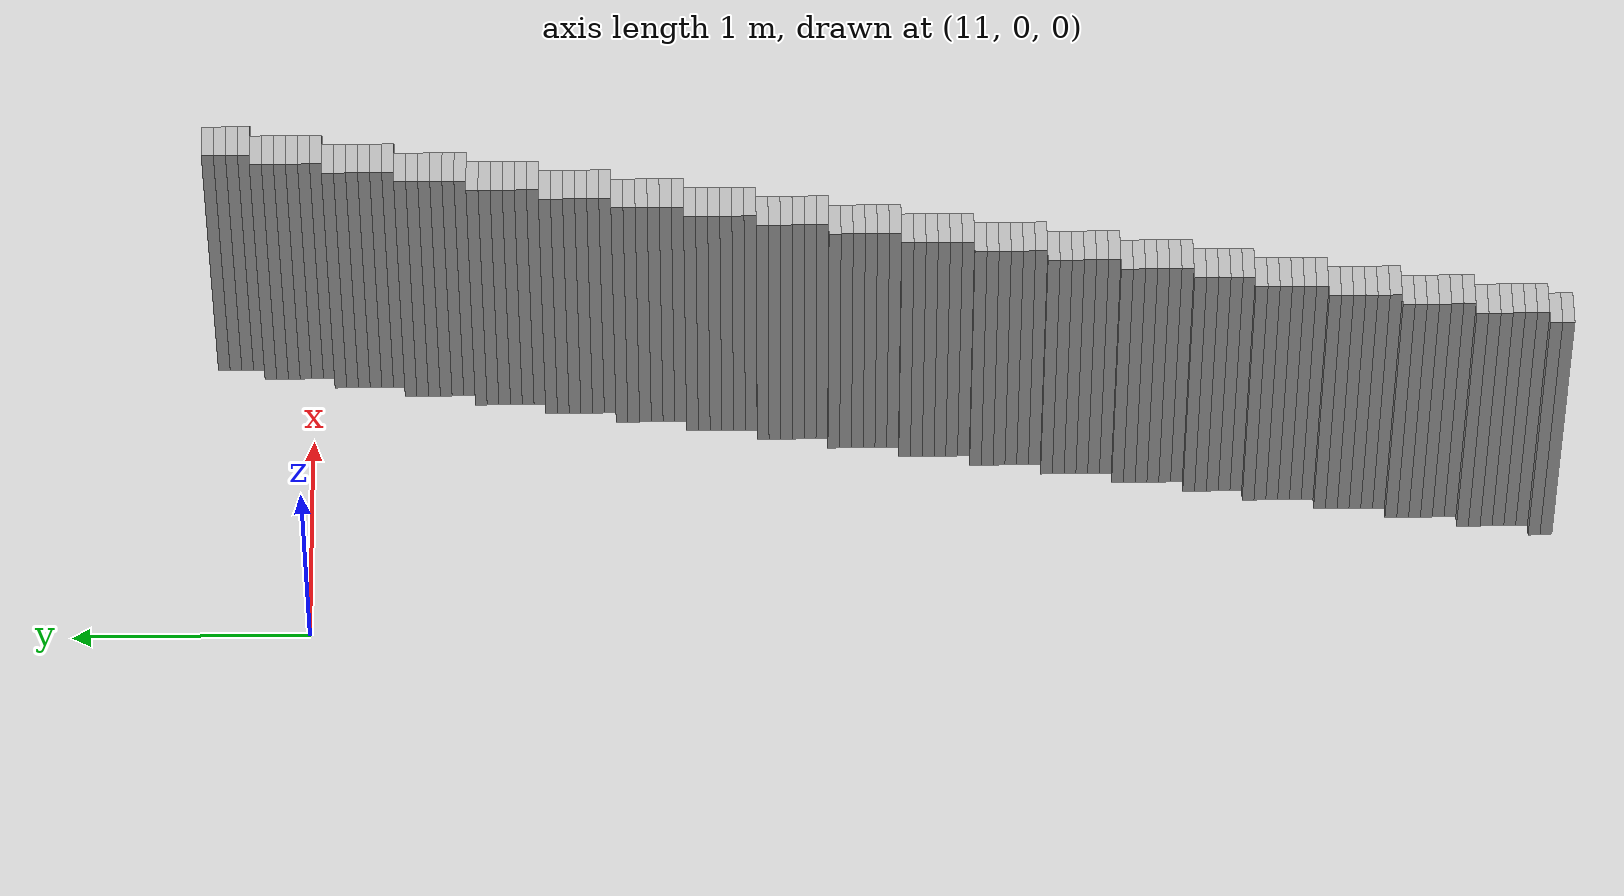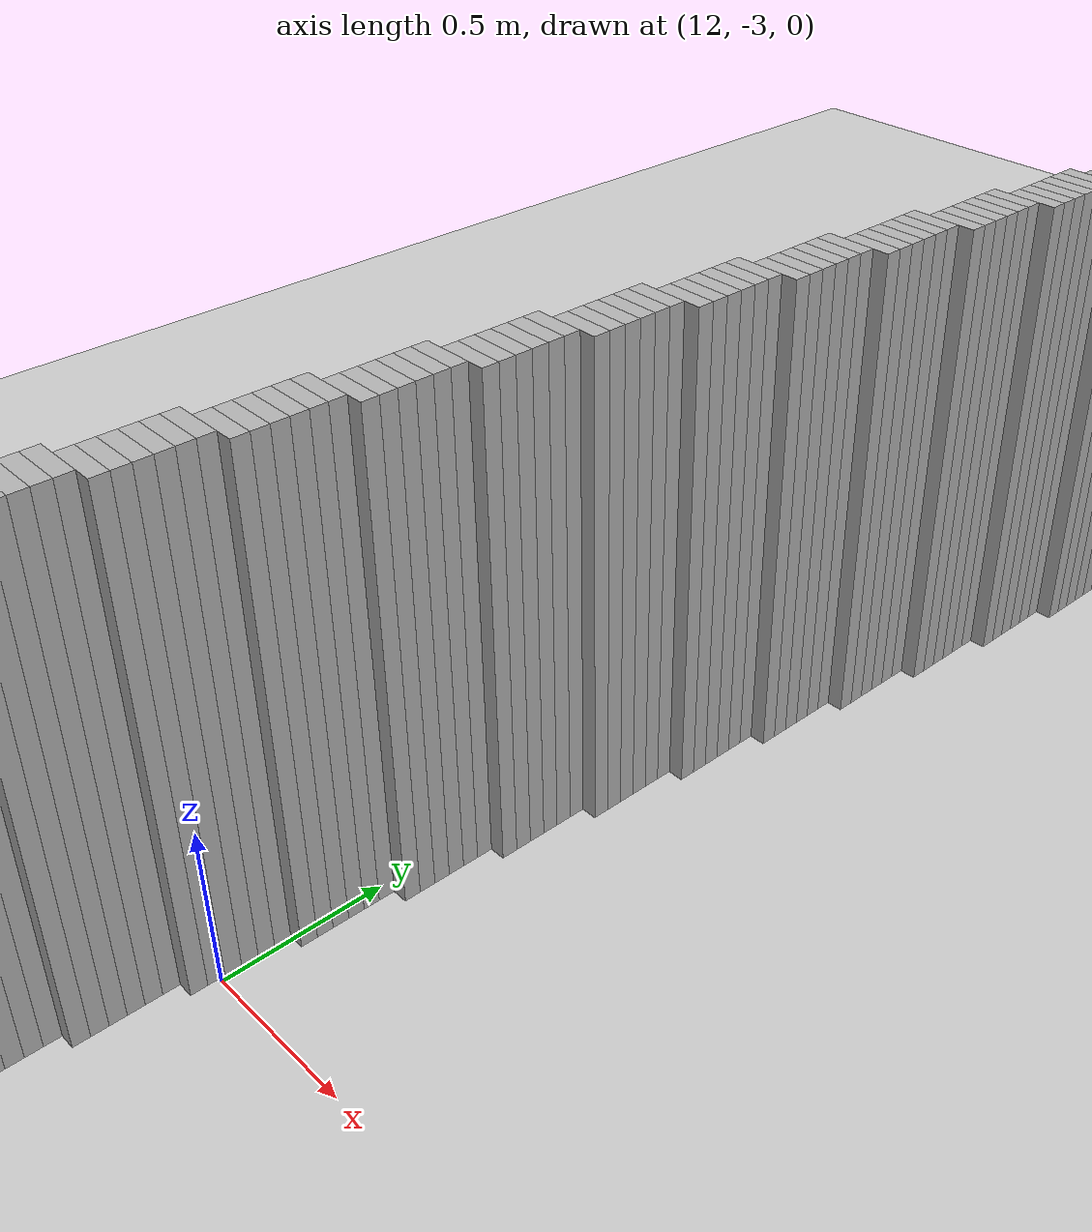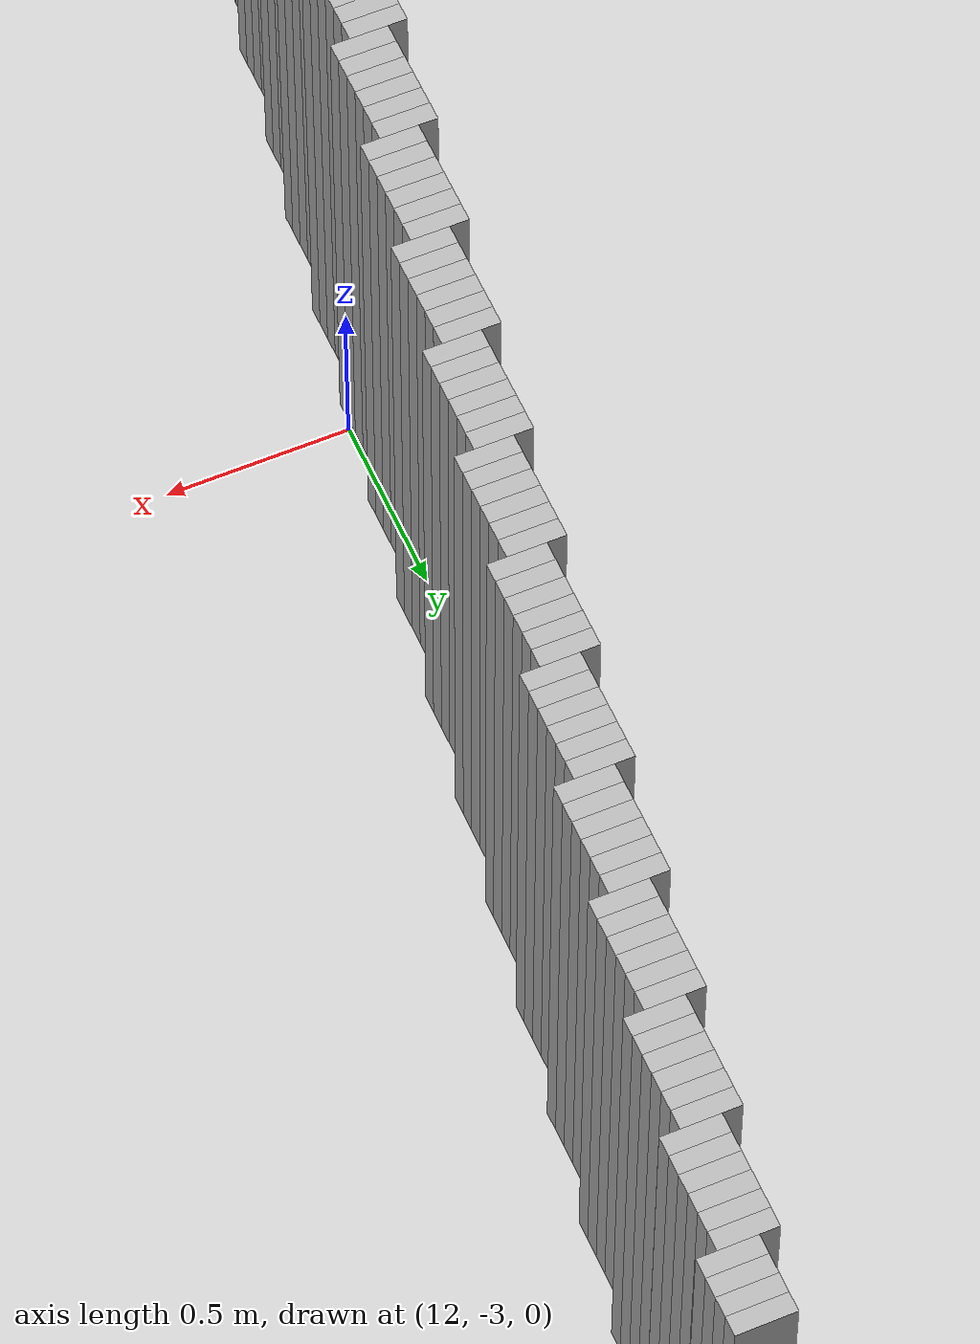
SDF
<sdf version="1.6">
 <world name="df_walled">
  <include><uri>model://sun</uri></include>
  <include><uri>model://ground_plane</uri></include>
  <model name="df_walls">
   <static>true</static>
   <link name="wall_00328">
    <pose>12.4640 0.3910 0.7500 0 0 0</pose>
    <collision name="col"><geometry><box><size>0.1500 0.0500 1.5000</size></box></geometry></collision>
    <visual name="vis">
     <geometry><box><size>0.1500 0.0500 1.5000</size></box></geometry>
     <material><ambient>0.5 0.5 0.5 1</ambient><diffuse>0.7 0.7 0.7 1</diffuse></material>
    </visual>
   </link>
   <link name="wall_00330">
    <pose>12.4640 0.3410 0.7500 0 0 0</pose>
    <collision name="col"><geometry><box><size>0.1500 0.0500 1.5000</size></box></geometry></collision>
    <visual name="vis">
     <geometry><box><size>0.1500 0.0500 1.5000</size></box></geometry>
     <material><ambient>0.5 0.5 0.5 1</ambient><diffuse>0.7 0.7 0.7 1</diffuse></material>
    </visual>
   </link>
   <link name="wall_00332">
    <pose>12.4640 0.2910 0.7500 0 0 0</pose>
    <collision name="col"><geometry><box><size>0.1500 0.0500 1.5000</size></box></geometry></collision>
    <visual name="vis">
     <geometry><box><size>0.1500 0.0500 1.5000</size></box></geometry>
     <material><ambient>0.5 0.5 0.5 1</ambient><diffuse>0.7 0.7 0.7 1</diffuse></material>
    </visual>
   </link>
   <link name="wall_00334">
    <pose>12.4640 0.2410 0.7500 0 0 0</pose>
    <collision name="col"><geometry><box><size>0.1500 0.0500 1.5000</size></box></geometry></collision>
    <visual name="vis">
     <geometry><box><size>0.1500 0.0500 1.5000</size></box></geometry>
     <material><ambient>0.5 0.5 0.5 1</ambient><diffuse>0.7 0.7 0.7 1</diffuse></material>
    </visual>
   </link>
   <link name="wall_00336">
    <pose>12.4140 0.1910 0.7500 0 0 0</pose>
    <collision name="col"><geometry><box><size>0.1500 0.0500 1.5000</size></box></geometry></collision>
    <visual name="vis">
     <geometry><box><size>0.1500 0.0500 1.5000</size></box></geometry>
     <material><ambient>0.5 0.5 0.5 1</ambient><diffuse>0.7 0.7 0.7 1</diffuse></material>
    </visual>
   </link>
   <link name="wall_00338">
    <pose>12.4140 0.1410 0.7500 0 0 0</pose>
    <collision name="col"><geometry><box><size>0.1500 0.0500 1.5000</size></box></geometry></collision>
    <visual name="vis">
     <geometry><box><size>0.1500 0.0500 1.5000</size></box></geometry>
     <material><ambient>0.5 0.5 0.5 1</ambient><diffuse>0.7 0.7 0.7 1</diffuse></material>
    </visual>
   </link>
   <link name="wall_00340">
    <pose>12.4140 0.0910 0.7500 0 0 0</pose>
    <collision name="col"><geometry><box><size>0.1500 0.0500 1.5000</size></box></geometry></collision>
    <visual name="vis">
     <geometry><box><size>0.1500 0.0500 1.5000</size></box></geometry>
     <material><ambient>0.5 0.5 0.5 1</ambient><diffuse>0.7 0.7 0.7 1</diffuse></material>
    </visual>
   </link>
   <link name="wall_00342">
    <pose>12.4140 0.0410 0.7500 0 0 0</pose>
    <collision name="col"><geometry><box><size>0.1500 0.0500 1.5000</size></box></geometry></collision>
    <visual name="vis">
     <geometry><box><size>0.1500 0.0500 1.5000</size></box></geometry>
     <material><ambient>0.5 0.5 0.5 1</ambient><diffuse>0.7 0.7 0.7 1</diffuse></material>
    </visual>
   </link>
   <link name="wall_00344">
    <pose>12.4140 -0.0090 0.7500 0 0 0</pose>
    <collision name="col"><geometry><box><size>0.1500 0.0500 1.5000</size></box></geometry></collision>
    <visual name="vis">
     <geometry><box><size>0.1500 0.0500 1.5000</size></box></geometry>
     <material><ambient>0.5 0.5 0.5 1</ambient><diffuse>0.7 0.7 0.7 1</diffuse></material>
    </visual>
   </link>
   <link name="wall_00346">
    <pose>12.4140 -0.0590 0.7500 0 0 0</pose>
    <collision name="col"><geometry><box><size>0.1500 0.0500 1.5000</size></box></geometry></collision>
    <visual name="vis">
     <geometry><box><size>0.1500 0.0500 1.5000</size></box></geometry>
     <material><ambient>0.5 0.5 0.5 1</ambient><diffuse>0.7 0.7 0.7 1</diffuse></material>
    </visual>
   </link>
   <link name="wall_00348">
    <pose>12.3640 -0.1090 0.7500 0 0 0</pose>
    <collision name="col"><geometry><box><size>0.1500 0.0500 1.5000</size></box></geometry></collision>
    <visual name="vis">
     <geometry><box><size>0.1500 0.0500 1.5000</size></box></geometry>
     <material><ambient>0.5 0.5 0.5 1</ambient><diffuse>0.7 0.7 0.7 1</diffuse></material>
    </visual>
   </link>
   <link name="wall_00350">
    <pose>12.3640 -0.1590 0.7500 0 0 0</pose>
    <collision name="col"><geometry><box><size>0.1500 0.0500 1.5000</size></box></geometry></collision>
    <visual name="vis">
     <geometry><box><size>0.1500 0.0500 1.5000</size></box></geometry>
     <material><ambient>0.5 0.5 0.5 1</ambient><diffuse>0.7 0.7 0.7 1</diffuse></material>
    </visual>
   </link>
   <link name="wall_00352">
    <pose>12.3640 -0.2090 0.7500 0 0 0</pose>
    <collision name="col"><geometry><box><size>0.1500 0.0500 1.5000</size></box></geometry></collision>
    <visual name="vis">
     <geometry><box><size>0.1500 0.0500 1.5000</size></box></geometry>
     <material><ambient>0.5 0.5 0.5 1</ambient><diffuse>0.7 0.7 0.7 1</diffuse></material>
    </visual>
   </link>
   <link name="wall_00354">
    <pose>12.3640 -0.2590 0.7500 0 0 0</pose>
    <collision name="col"><geometry><box><size>0.1500 0.0500 1.5000</size></box></geometry></collision>
    <visual name="vis">
     <geometry><box><size>0.1500 0.0500 1.5000</size></box></geometry>
     <material><ambient>0.5 0.5 0.5 1</ambient><diffuse>0.7 0.7 0.7 1</diffuse></material>
    </visual>
   </link>
   <link name="wall_00356">
    <pose>12.3640 -0.3090 0.7500 0 0 0</pose>
    <collision name="col"><geometry><box><size>0.1500 0.0500 1.5000</size></box></geometry></collision>
    <visual name="vis">
     <geometry><box><size>0.1500 0.0500 1.5000</size></box></geometry>
     <material><ambient>0.5 0.5 0.5 1</ambient><diffuse>0.7 0.7 0.7 1</diffuse></material>
    </visual>
   </link>
   <link name="wall_00358">
    <pose>12.3640 -0.3590 0.7500 0 0 0</pose>
    <collision name="col"><geometry><box><size>0.1500 0.0500 1.5000</size></box></geometry></collision>
    <visual name="vis">
     <geometry><box><size>0.1500 0.0500 1.5000</size></box></geometry>
     <material><ambient>0.5 0.5 0.5 1</ambient><diffuse>0.7 0.7 0.7 1</diffuse></material>
    </visual>
   </link>
   <link name="wall_00360">
    <pose>12.3140 -0.4090 0.7500 0 0 0</pose>
    <collision name="col"><geometry><box><size>0.1500 0.0500 1.5000</size></box></geometry></collision>
    <visual name="vis">
     <geometry><box><size>0.1500 0.0500 1.5000</size></box></geometry>
     <material><ambient>0.5 0.5 0.5 1</ambient><diffuse>0.7 0.7 0.7 1</diffuse></material>
    </visual>
   </link>
   <link name="wall_00362">
    <pose>12.3140 -0.4590 0.7500 0 0 0</pose>
    <collision name="col"><geometry><box><size>0.1500 0.0500 1.5000</size></box></geometry></collision>
    <visual name="vis">
     <geometry><box><size>0.1500 0.0500 1.5000</size></box></geometry>
     <material><ambient>0.5 0.5 0.5 1</ambient><diffuse>0.7 0.7 0.7 1</diffuse></material>
    </visual>
   </link>
   <link name="wall_00364">
    <pose>12.3140 -0.5090 0.7500 0 0 0</pose>
    <collision name="col"><geometry><box><size>0.1500 0.0500 1.5000</size></box></geometry></collision>
    <visual name="vis">
     <geometry><box><size>0.1500 0.0500 1.5000</size></box></geometry>
     <material><ambient>0.5 0.5 0.5 1</ambient><diffuse>0.7 0.7 0.7 1</diffuse></material>
    </visual>
   </link>
   <link name="wall_00366">
    <pose>12.3140 -0.5590 0.7500 0 0 0</pose>
    <collision name="col"><geometry><box><size>0.1500 0.0500 1.5000</size></box></geometry></collision>
    <visual name="vis">
     <geometry><box><size>0.1500 0.0500 1.5000</size></box></geometry>
     <material><ambient>0.5 0.5 0.5 1</ambient><diffuse>0.7 0.7 0.7 1</diffuse></material>
    </visual>
   </link>
   <link name="wall_00368">
    <pose>12.3140 -0.6090 0.7500 0 0 0</pose>
    <collision name="col"><geometry><box><size>0.1500 0.0500 1.5000</size></box></geometry></collision>
    <visual name="vis">
     <geometry><box><size>0.1500 0.0500 1.5000</size></box></geometry>
     <material><ambient>0.5 0.5 0.5 1</ambient><diffuse>0.7 0.7 0.7 1</diffuse></material>
    </visual>
   </link>
   <link name="wall_00370">
    <pose>12.3140 -0.6590 0.7500 0 0 0</pose>
    <collision name="col"><geometry><box><size>0.1500 0.0500 1.5000</size></box></geometry></collision>
    <visual name="vis">
     <geometry><box><size>0.1500 0.0500 1.5000</size></box></geometry>
     <material><ambient>0.5 0.5 0.5 1</ambient><diffuse>0.7 0.7 0.7 1</diffuse></material>
    </visual>
   </link>
   <link name="wall_00372">
    <pose>12.2640 -0.7090 0.7500 0 0 0</pose>
    <collision name="col"><geometry><box><size>0.1500 0.0500 1.5000</size></box></geometry></collision>
    <visual name="vis">
     <geometry><box><size>0.1500 0.0500 1.5000</size></box></geometry>
     <material><ambient>0.5 0.5 0.5 1</ambient><diffuse>0.7 0.7 0.7 1</diffuse></material>
    </visual>
   </link>
   <link name="wall_00374">
    <pose>12.2640 -0.7590 0.7500 0 0 0</pose>
    <collision name="col"><geometry><box><size>0.1500 0.0500 1.5000</size></box></geometry></collision>
    <visual name="vis">
     <geometry><box><size>0.1500 0.0500 1.5000</size></box></geometry>
     <material><ambient>0.5 0.5 0.5 1</ambient><diffuse>0.7 0.7 0.7 1</diffuse></material>
    </visual>
   </link>
   <link name="wall_00376">
    <pose>12.2640 -0.8090 0.7500 0 0 0</pose>
    <collision name="col"><geometry><box><size>0.1500 0.0500 1.5000</size></box></geometry></collision>
    <visual name="vis">
     <geometry><box><size>0.1500 0.0500 1.5000</size></box></geometry>
     <material><ambient>0.5 0.5 0.5 1</ambient><diffuse>0.7 0.7 0.7 1</diffuse></material>
    </visual>
   </link>
   <link name="wall_00378">
    <pose>12.2640 -0.8590 0.7500 0 0 0</pose>
    <collision name="col"><geometry><box><size>0.1500 0.0500 1.5000</size></box></geometry></collision>
    <visual name="vis">
     <geometry><box><size>0.1500 0.0500 1.5000</size></box></geometry>
     <material><ambient>0.5 0.5 0.5 1</ambient><diffuse>0.7 0.7 0.7 1</diffuse></material>
    </visual>
   </link>
   <link name="wall_00380">
    <pose>12.2640 -0.9090 0.7500 0 0 0</pose>
    <collision name="col"><geometry><box><size>0.1500 0.0500 1.5000</size></box></geometry></collision>
    <visual name="vis">
     <geometry><box><size>0.1500 0.0500 1.5000</size></box></geometry>
     <material><ambient>0.5 0.5 0.5 1</ambient><diffuse>0.7 0.7 0.7 1</diffuse></material>
    </visual>
   </link>
   <link name="wall_00382">
    <pose>12.2640 -0.9590 0.7500 0 0 0</pose>
    <collision name="col"><geometry><box><size>0.1500 0.0500 1.5000</size></box></geometry></collision>
    <visual name="vis">
     <geometry><box><size>0.1500 0.0500 1.5000</size></box></geometry>
     <material><ambient>0.5 0.5 0.5 1</ambient><diffuse>0.7 0.7 0.7 1</diffuse></material>
    </visual>
   </link>
   <link name="wall_00384">
    <pose>12.2140 -1.0090 0.7500 0 0 0</pose>
    <collision name="col"><geometry><box><size>0.1500 0.0500 1.5000</size></box></geometry></collision>
    <visual name="vis">
     <geometry><box><size>0.1500 0.0500 1.5000</size></box></geometry>
     <material><ambient>0.5 0.5 0.5 1</ambient><diffuse>0.7 0.7 0.7 1</diffuse></material>
    </visual>
   </link>
   <link name="wall_00386">
    <pose>12.2140 -1.0590 0.7500 0 0 0</pose>
    <collision name="col"><geometry><box><size>0.1500 0.0500 1.5000</size></box></geometry></collision>
    <visual name="vis">
     <geometry><box><size>0.1500 0.0500 1.5000</size></box></geometry>
     <material><ambient>0.5 0.5 0.5 1</ambient><diffuse>0.7 0.7 0.7 1</diffuse></material>
    </visual>
   </link>
   <link name="wall_00388">
    <pose>12.2140 -1.1090 0.7500 0 0 0</pose>
    <collision name="col"><geometry><box><size>0.1500 0.0500 1.5000</size></box></geometry></collision>
    <visual name="vis">
     <geometry><box><size>0.1500 0.0500 1.5000</size></box></geometry>
     <material><ambient>0.5 0.5 0.5 1</ambient><diffuse>0.7 0.7 0.7 1</diffuse></material>
    </visual>
   </link>
   <link name="wall_00390">
    <pose>12.2140 -1.1590 0.7500 0 0 0</pose>
    <collision name="col"><geometry><box><size>0.1500 0.0500 1.5000</size></box></geometry></collision>
    <visual name="vis">
     <geometry><box><size>0.1500 0.0500 1.5000</size></box></geometry>
     <material><ambient>0.5 0.5 0.5 1</ambient><diffuse>0.7 0.7 0.7 1</diffuse></material>
    </visual>
   </link>
   <link name="wall_00392">
    <pose>12.2140 -1.2090 0.7500 0 0 0</pose>
    <collision name="col"><geometry><box><size>0.1500 0.0500 1.5000</size></box></geometry></collision>
    <visual name="vis">
     <geometry><box><size>0.1500 0.0500 1.5000</size></box></geometry>
     <material><ambient>0.5 0.5 0.5 1</ambient><diffuse>0.7 0.7 0.7 1</diffuse></material>
    </visual>
   </link>
   <link name="wall_00394">
    <pose>12.2140 -1.2590 0.7500 0 0 0</pose>
    <collision name="col"><geometry><box><size>0.1500 0.0500 1.5000</size></box></geometry></collision>
    <visual name="vis">
     <geometry><box><size>0.1500 0.0500 1.5000</size></box></geometry>
     <material><ambient>0.5 0.5 0.5 1</ambient><diffuse>0.7 0.7 0.7 1</diffuse></material>
    </visual>
   </link>
   <link name="wall_00396">
    <pose>12.1640 -1.3090 0.7500 0 0 0</pose>
    <collision name="col"><geometry><box><size>0.1500 0.0500 1.5000</size></box></geometry></collision>
    <visual name="vis">
     <geometry><box><size>0.1500 0.0500 1.5000</size></box></geometry>
     <material><ambient>0.5 0.5 0.5 1</ambient><diffuse>0.7 0.7 0.7 1</diffuse></material>
    </visual>
   </link>
   <link name="wall_00398">
    <pose>12.1640 -1.3590 0.7500 0 0 0</pose>
    <collision name="col"><geometry><box><size>0.1500 0.0500 1.5000</size></box></geometry></collision>
    <visual name="vis">
     <geometry><box><size>0.1500 0.0500 1.5000</size></box></geometry>
     <material><ambient>0.5 0.5 0.5 1</ambient><diffuse>0.7 0.7 0.7 1</diffuse></material>
    </visual>
   </link>
   <link name="wall_00400">
    <pose>12.1640 -1.4090 0.7500 0 0 0</pose>
    <collision name="col"><geometry><box><size>0.1500 0.0500 1.5000</size></box></geometry></collision>
    <visual name="vis">
     <geometry><box><size>0.1500 0.0500 1.5000</size></box></geometry>
     <material><ambient>0.5 0.5 0.5 1</ambient><diffuse>0.7 0.7 0.7 1</diffuse></material>
    </visual>
   </link>
   <link name="wall_00402">
    <pose>12.1640 -1.4590 0.7500 0 0 0</pose>
    <collision name="col"><geometry><box><size>0.1500 0.0500 1.5000</size></box></geometry></collision>
    <visual name="vis">
     <geometry><box><size>0.1500 0.0500 1.5000</size></box></geometry>
     <material><ambient>0.5 0.5 0.5 1</ambient><diffuse>0.7 0.7 0.7 1</diffuse></material>
    </visual>
   </link>
   <link name="wall_00404">
    <pose>12.1640 -1.5090 0.7500 0 0 0</pose>
    <collision name="col"><geometry><box><size>0.1500 0.0500 1.5000</size></box></geometry></collision>
    <visual name="vis">
     <geometry><box><size>0.1500 0.0500 1.5000</size></box></geometry>
     <material><ambient>0.5 0.5 0.5 1</ambient><diffuse>0.7 0.7 0.7 1</diffuse></material>
    </visual>
   </link>
   <link name="wall_00406">
    <pose>12.1640 -1.5590 0.7500 0 0 0</pose>
    <collision name="col"><geometry><box><size>0.1500 0.0500 1.5000</size></box></geometry></collision>
    <visual name="vis">
     <geometry><box><size>0.1500 0.0500 1.5000</size></box></geometry>
     <material><ambient>0.5 0.5 0.5 1</ambient><diffuse>0.7 0.7 0.7 1</diffuse></material>
    </visual>
   </link>
   <link name="wall_00408">
    <pose>12.1140 -1.6090 0.7500 0 0 0</pose>
    <collision name="col"><geometry><box><size>0.1500 0.0500 1.5000</size></box></geometry></collision>
    <visual name="vis">
     <geometry><box><size>0.1500 0.0500 1.5000</size></box></geometry>
     <material><ambient>0.5 0.5 0.5 1</ambient><diffuse>0.7 0.7 0.7 1</diffuse></material>
    </visual>
   </link>
   <link name="wall_00410">
    <pose>12.1140 -1.6590 0.7500 0 0 0</pose>
    <collision name="col"><geometry><box><size>0.1500 0.0500 1.5000</size></box></geometry></collision>
    <visual name="vis">
     <geometry><box><size>0.1500 0.0500 1.5000</size></box></geometry>
     <material><ambient>0.5 0.5 0.5 1</ambient><diffuse>0.7 0.7 0.7 1</diffuse></material>
    </visual>
   </link>
   <link name="wall_00412">
    <pose>12.1140 -1.7090 0.7500 0 0 0</pose>
    <collision name="col"><geometry><box><size>0.1500 0.0500 1.5000</size></box></geometry></collision>
    <visual name="vis">
     <geometry><box><size>0.1500 0.0500 1.5000</size></box></geometry>
     <material><ambient>0.5 0.5 0.5 1</ambient><diffuse>0.7 0.7 0.7 1</diffuse></material>
    </visual>
   </link>
   <link name="wall_00414">
    <pose>12.1140 -1.7590 0.7500 0 0 0</pose>
    <collision name="col"><geometry><box><size>0.1500 0.0500 1.5000</size></box></geometry></collision>
    <visual name="vis">
     <geometry><box><size>0.1500 0.0500 1.5000</size></box></geometry>
     <material><ambient>0.5 0.5 0.5 1</ambient><diffuse>0.7 0.7 0.7 1</diffuse></material>
    </visual>
   </link>
   <link name="wall_00416">
    <pose>12.1140 -1.8090 0.7500 0 0 0</pose>
    <collision name="col"><geometry><box><size>0.1500 0.0500 1.5000</size></box></geometry></collision>
    <visual name="vis">
     <geometry><box><size>0.1500 0.0500 1.5000</size></box></geometry>
     <material><ambient>0.5 0.5 0.5 1</ambient><diffuse>0.7 0.7 0.7 1</diffuse></material>
    </visual>
   </link>
   <link name="wall_00418">
    <pose>12.1140 -1.8590 0.7500 0 0 0</pose>
    <collision name="col"><geometry><box><size>0.1500 0.0500 1.5000</size></box></geometry></collision>
    <visual name="vis">
     <geometry><box><size>0.1500 0.0500 1.5000</size></box></geometry>
     <material><ambient>0.5 0.5 0.5 1</ambient><diffuse>0.7 0.7 0.7 1</diffuse></material>
    </visual>
   </link>
   <link name="wall_00420">
    <pose>12.0640 -1.9090 0.7500 0 0 0</pose>
    <collision name="col"><geometry><box><size>0.1500 0.0500 1.5000</size></box></geometry></collision>
    <visual name="vis">
     <geometry><box><size>0.1500 0.0500 1.5000</size></box></geometry>
     <material><ambient>0.5 0.5 0.5 1</ambient><diffuse>0.7 0.7 0.7 1</diffuse></material>
    </visual>
   </link>
   <link name="wall_00422">
    <pose>12.0640 -1.9590 0.7500 0 0 0</pose>
    <collision name="col"><geometry><box><size>0.1500 0.0500 1.5000</size></box></geometry></collision>
    <visual name="vis">
     <geometry><box><size>0.1500 0.0500 1.5000</size></box></geometry>
     <material><ambient>0.5 0.5 0.5 1</ambient><diffuse>0.7 0.7 0.7 1</diffuse></material>
    </visual>
   </link>
   <link name="wall_00424">
    <pose>12.0640 -2.0090 0.7500 0 0 0</pose>
    <collision name="col"><geometry><box><size>0.1500 0.0500 1.5000</size></box></geometry></collision>
    <visual name="vis">
     <geometry><box><size>0.1500 0.0500 1.5000</size></box></geometry>
     <material><ambient>0.5 0.5 0.5 1</ambient><diffuse>0.7 0.7 0.7 1</diffuse></material>
    </visual>
   </link>
   <link name="wall_00426">
    <pose>12.0640 -2.0590 0.7500 0 0 0</pose>
    <collision name="col"><geometry><box><size>0.1500 0.0500 1.5000</size></box></geometry></collision>
    <visual name="vis">
     <geometry><box><size>0.1500 0.0500 1.5000</size></box></geometry>
     <material><ambient>0.5 0.5 0.5 1</ambient><diffuse>0.7 0.7 0.7 1</diffuse></material>
    </visual>
   </link>
   <link name="wall_00428">
    <pose>12.0640 -2.1090 0.7500 0 0 0</pose>
    <collision name="col"><geometry><box><size>0.1500 0.0500 1.5000</size></box></geometry></collision>
    <visual name="vis">
     <geometry><box><size>0.1500 0.0500 1.5000</size></box></geometry>
     <material><ambient>0.5 0.5 0.5 1</ambient><diffuse>0.7 0.7 0.7 1</diffuse></material>
    </visual>
   </link>
   <link name="wall_00430">
    <pose>12.0640 -2.1590 0.7500 0 0 0</pose>
    <collision name="col"><geometry><box><size>0.1500 0.0500 1.5000</size></box></geometry></collision>
    <visual name="vis">
     <geometry><box><size>0.1500 0.0500 1.5000</size></box></geometry>
     <material><ambient>0.5 0.5 0.5 1</ambient><diffuse>0.7 0.7 0.7 1</diffuse></material>
    </visual>
   </link>
   <link name="wall_00432">
    <pose>12.0140 -2.2090 0.7500 0 0 0</pose>
    <collision name="col"><geometry><box><size>0.1500 0.0500 1.5000</size></box></geometry></collision>
    <visual name="vis">
     <geometry><box><size>0.1500 0.0500 1.5000</size></box></geometry>
     <material><ambient>0.5 0.5 0.5 1</ambient><diffuse>0.7 0.7 0.7 1</diffuse></material>
    </visual>
   </link>
   <link name="wall_00434">
    <pose>12.0140 -2.2590 0.7500 0 0 0</pose>
    <collision name="col"><geometry><box><size>0.1500 0.0500 1.5000</size></box></geometry></collision>
    <visual name="vis">
     <geometry><box><size>0.1500 0.0500 1.5000</size></box></geometry>
     <material><ambient>0.5 0.5 0.5 1</ambient><diffuse>0.7 0.7 0.7 1</diffuse></material>
    </visual>
   </link>
   <link name="wall_00436">
    <pose>12.0140 -2.3090 0.7500 0 0 0</pose>
    <collision name="col"><geometry><box><size>0.1500 0.0500 1.5000</size></box></geometry></collision>
    <visual name="vis">
     <geometry><box><size>0.1500 0.0500 1.5000</size></box></geometry>
     <material><ambient>0.5 0.5 0.5 1</ambient><diffuse>0.7 0.7 0.7 1</diffuse></material>
    </visual>
   </link>
   <link name="wall_00438">
    <pose>12.0140 -2.3590 0.7500 0 0 0</pose>
    <collision name="col"><geometry><box><size>0.1500 0.0500 1.5000</size></box></geometry></collision>
    <visual name="vis">
     <geometry><box><size>0.1500 0.0500 1.5000</size></box></geometry>
     <material><ambient>0.5 0.5 0.5 1</ambient><diffuse>0.7 0.7 0.7 1</diffuse></material>
    </visual>
   </link>
   <link name="wall_00440">
    <pose>12.0140 -2.4090 0.7500 0 0 0</pose>
    <collision name="col"><geometry><box><size>0.1500 0.0500 1.5000</size></box></geometry></collision>
    <visual name="vis">
     <geometry><box><size>0.1500 0.0500 1.5000</size></box></geometry>
     <material><ambient>0.5 0.5 0.5 1</ambient><diffuse>0.7 0.7 0.7 1</diffuse></material>
    </visual>
   </link>
   <link name="wall_00442">
    <pose>12.0140 -2.4590 0.7500 0 0 0</pose>
    <collision name="col"><geometry><box><size>0.1500 0.0500 1.5000</size></box></geometry></collision>
    <visual name="vis">
     <geometry><box><size>0.1500 0.0500 1.5000</size></box></geometry>
     <material><ambient>0.5 0.5 0.5 1</ambient><diffuse>0.7 0.7 0.7 1</diffuse></material>
    </visual>
   </link>
   <link name="wall_00444">
    <pose>11.9640 -2.5090 0.7500 0 0 0</pose>
    <collision name="col"><geometry><box><size>0.1500 0.0500 1.5000</size></box></geometry></collision>
    <visual name="vis">
     <geometry><box><size>0.1500 0.0500 1.5000</size></box></geometry>
     <material><ambient>0.5 0.5 0.5 1</ambient><diffuse>0.7 0.7 0.7 1</diffuse></material>
    </visual>
   </link>
   <link name="wall_00446">
    <pose>11.9640 -2.5590 0.7500 0 0 0</pose>
    <collision name="col"><geometry><box><size>0.1500 0.0500 1.5000</size></box></geometry></collision>
    <visual name="vis">
     <geometry><box><size>0.1500 0.0500 1.5000</size></box></geometry>
     <material><ambient>0.5 0.5 0.5 1</ambient><diffuse>0.7 0.7 0.7 1</diffuse></material>
    </visual>
   </link>
   <link name="wall_00448">
    <pose>11.9640 -2.6090 0.7500 0 0 0</pose>
    <collision name="col"><geometry><box><size>0.1500 0.0500 1.5000</size></box></geometry></collision>
    <visual name="vis">
     <geometry><box><size>0.1500 0.0500 1.5000</size></box></geometry>
     <material><ambient>0.5 0.5 0.5 1</ambient><diffuse>0.7 0.7 0.7 1</diffuse></material>
    </visual>
   </link>
   <link name="wall_00450">
    <pose>11.9640 -2.6590 0.7500 0 0 0</pose>
    <collision name="col"><geometry><box><size>0.1500 0.0500 1.5000</size></box></geometry></collision>
    <visual name="vis">
     <geometry><box><size>0.1500 0.0500 1.5000</size></box></geometry>
     <material><ambient>0.5 0.5 0.5 1</ambient><diffuse>0.7 0.7 0.7 1</diffuse></material>
    </visual>
   </link>
   <link name="wall_00452">
    <pose>11.9640 -2.7090 0.7500 0 0 0</pose>
    <collision name="col"><geometry><box><size>0.1500 0.0500 1.5000</size></box></geometry></collision>
    <visual name="vis">
     <geometry><box><size>0.1500 0.0500 1.5000</size></box></geometry>
     <material><ambient>0.5 0.5 0.5 1</ambient><diffuse>0.7 0.7 0.7 1</diffuse></material>
    </visual>
   </link>
   <link name="wall_00454">
    <pose>11.9640 -2.7590 0.7500 0 0 0</pose>
    <collision name="col"><geometry><box><size>0.1500 0.0500 1.5000</size></box></geometry></collision>
    <visual name="vis">
     <geometry><box><size>0.1500 0.0500 1.5000</size></box></geometry>
     <material><ambient>0.5 0.5 0.5 1</ambient><diffuse>0.7 0.7 0.7 1</diffuse></material>
    </visual>
   </link>
   <link name="wall_00456">
    <pose>11.9140 -2.8090 0.7500 0 0 0</pose>
    <collision name="col"><geometry><box><size>0.1500 0.0500 1.5000</size></box></geometry></collision>
    <visual name="vis">
     <geometry><box><size>0.1500 0.0500 1.5000</size></box></geometry>
     <material><ambient>0.5 0.5 0.5 1</ambient><diffuse>0.7 0.7 0.7 1</diffuse></material>
    </visual>
   </link>
   <link name="wall_00458">
    <pose>11.9140 -2.8590 0.7500 0 0 0</pose>
    <collision name="col"><geometry><box><size>0.1500 0.0500 1.5000</size></box></geometry></collision>
    <visual name="vis">
     <geometry><box><size>0.1500 0.0500 1.5000</size></box></geometry>
     <material><ambient>0.5 0.5 0.5 1</ambient><diffuse>0.7 0.7 0.7 1</diffuse></material>
    </visual>
   </link>
   <link name="wall_00460">
    <pose>11.9140 -2.9090 0.7500 0 0 0</pose>
    <collision name="col"><geometry><box><size>0.1500 0.0500 1.5000</size></box></geometry></collision>
    <visual name="vis">
     <geometry><box><size>0.1500 0.0500 1.5000</size></box></geometry>
     <material><ambient>0.5 0.5 0.5 1</ambient><diffuse>0.7 0.7 0.7 1</diffuse></material>
    </visual>
   </link>
   <link name="wall_00462">
    <pose>11.9140 -2.9590 0.7500 0 0 0</pose>
    <collision name="col"><geometry><box><size>0.1500 0.0500 1.5000</size></box></geometry></collision>
    <visual name="vis">
     <geometry><box><size>0.1500 0.0500 1.5000</size></box></geometry>
     <material><ambient>0.5 0.5 0.5 1</ambient><diffuse>0.7 0.7 0.7 1</diffuse></material>
    </visual>
   </link>
   <link name="wall_00464">
    <pose>11.9140 -3.0090 0.7500 0 0 0</pose>
    <collision name="col"><geometry><box><size>0.1500 0.0500 1.5000</size></box></geometry></collision>
    <visual name="vis">
     <geometry><box><size>0.1500 0.0500 1.5000</size></box></geometry>
     <material><ambient>0.5 0.5 0.5 1</ambient><diffuse>0.7 0.7 0.7 1</diffuse></material>
    </visual>
   </link>
   <link name="wall_00466">
    <pose>11.9140 -3.0590 0.7500 0 0 0</pose>
    <collision name="col"><geometry><box><size>0.1500 0.0500 1.5000</size></box></geometry></collision>
    <visual name="vis">
     <geometry><box><size>0.1500 0.0500 1.5000</size></box></geometry>
     <material><ambient>0.5 0.5 0.5 1</ambient><diffuse>0.7 0.7 0.7 1</diffuse></material>
    </visual>
   </link>
   <link name="wall_00468">
    <pose>11.8640 -3.1090 0.7500 0 0 0</pose>
    <collision name="col"><geometry><box><size>0.1500 0.0500 1.5000</size></box></geometry></collision>
    <visual name="vis">
     <geometry><box><size>0.1500 0.0500 1.5000</size></box></geometry>
     <material><ambient>0.5 0.5 0.5 1</ambient><diffuse>0.7 0.7 0.7 1</diffuse></material>
    </visual>
   </link>
   <link name="wall_00470">
    <pose>11.8640 -3.1590 0.7500 0 0 0</pose>
    <collision name="col"><geometry><box><size>0.1500 0.0500 1.5000</size></box></geometry></collision>
    <visual name="vis">
     <geometry><box><size>0.1500 0.0500 1.5000</size></box></geometry>
     <material><ambient>0.5 0.5 0.5 1</ambient><diffuse>0.7 0.7 0.7 1</diffuse></material>
    </visual>
   </link>
   <link name="wall_00472">
    <pose>11.8640 -3.2090 0.7500 0 0 0</pose>
    <collision name="col"><geometry><box><size>0.1500 0.0500 1.5000</size></box></geometry></collision>
    <visual name="vis">
     <geometry><box><size>0.1500 0.0500 1.5000</size></box></geometry>
     <material><ambient>0.5 0.5 0.5 1</ambient><diffuse>0.7 0.7 0.7 1</diffuse></material>
    </visual>
   </link>
   <link name="wall_00474">
    <pose>11.8640 -3.2590 0.7500 0 0 0</pose>
    <collision name="col"><geometry><box><size>0.1500 0.0500 1.5000</size></box></geometry></collision>
    <visual name="vis">
     <geometry><box><size>0.1500 0.0500 1.5000</size></box></geometry>
     <material><ambient>0.5 0.5 0.5 1</ambient><diffuse>0.7 0.7 0.7 1</diffuse></material>
    </visual>
   </link>
   <link name="wall_00476">
    <pose>11.8640 -3.3090 0.7500 0 0 0</pose>
    <collision name="col"><geometry><box><size>0.1500 0.0500 1.5000</size></box></geometry></collision>
    <visual name="vis">
     <geometry><box><size>0.1500 0.0500 1.5000</size></box></geometry>
     <material><ambient>0.5 0.5 0.5 1</ambient><diffuse>0.7 0.7 0.7 1</diffuse></material>
    </visual>
   </link>
   <link name="wall_00478">
    <pose>11.8640 -3.3590 0.7500 0 0 0</pose>
    <collision name="col"><geometry><box><size>0.1500 0.0500 1.5000</size></box></geometry></collision>
    <visual name="vis">
     <geometry><box><size>0.1500 0.0500 1.5000</size></box></geometry>
     <material><ambient>0.5 0.5 0.5 1</ambient><diffuse>0.7 0.7 0.7 1</diffuse></material>
    </visual>
   </link>
   <link name="wall_00480">
    <pose>11.8140 -3.4090 0.7500 0 0 0</pose>
    <collision name="col"><geometry><box><size>0.1500 0.0500 1.5000</size></box></geometry></collision>
    <visual name="vis">
     <geometry><box><size>0.1500 0.0500 1.5000</size></box></geometry>
     <material><ambient>0.5 0.5 0.5 1</ambient><diffuse>0.7 0.7 0.7 1</diffuse></material>
    </visual>
   </link>
   <link name="wall_00482">
    <pose>11.8140 -3.4590 0.7500 0 0 0</pose>
    <collision name="col"><geometry><box><size>0.1500 0.0500 1.5000</size></box></geometry></collision>
    <visual name="vis">
     <geometry><box><size>0.1500 0.0500 1.5000</size></box></geometry>
     <material><ambient>0.5 0.5 0.5 1</ambient><diffuse>0.7 0.7 0.7 1</diffuse></material>
    </visual>
   </link>
   <link name="wall_00484">
    <pose>11.8140 -3.5090 0.7500 0 0 0</pose>
    <collision name="col"><geometry><box><size>0.1500 0.0500 1.5000</size></box></geometry></collision>
    <visual name="vis">
     <geometry><box><size>0.1500 0.0500 1.5000</size></box></geometry>
     <material><ambient>0.5 0.5 0.5 1</ambient><diffuse>0.7 0.7 0.7 1</diffuse></material>
    </visual>
   </link>
   <link name="wall_00486">
    <pose>11.8140 -3.5590 0.7500 0 0 0</pose>
    <collision name="col"><geometry><box><size>0.1500 0.0500 1.5000</size></box></geometry></collision>
    <visual name="vis">
     <geometry><box><size>0.1500 0.0500 1.5000</size></box></geometry>
     <material><ambient>0.5 0.5 0.5 1</ambient><diffuse>0.7 0.7 0.7 1</diffuse></material>
    </visual>
   </link>
   <link name="wall_00488">
    <pose>11.8140 -3.6090 0.7500 0 0 0</pose>
    <collision name="col"><geometry><box><size>0.1500 0.0500 1.5000</size></box></geometry></collision>
    <visual name="vis">
     <geometry><box><size>0.1500 0.0500 1.5000</size></box></geometry>
     <material><ambient>0.5 0.5 0.5 1</ambient><diffuse>0.7 0.7 0.7 1</diffuse></material>
    </visual>
   </link>
   <link name="wall_00490">
    <pose>11.8140 -3.6590 0.7500 0 0 0</pose>
    <collision name="col"><geometry><box><size>0.1500 0.0500 1.5000</size></box></geometry></collision>
    <visual name="vis">
     <geometry><box><size>0.1500 0.0500 1.5000</size></box></geometry>
     <material><ambient>0.5 0.5 0.5 1</ambient><diffuse>0.7 0.7 0.7 1</diffuse></material>
    </visual>
   </link>
   <link name="wall_00492">
    <pose>11.7640 -3.7090 0.7500 0 0 0</pose>
    <collision name="col"><geometry><box><size>0.1500 0.0500 1.5000</size></box></geometry></collision>
    <visual name="vis">
     <geometry><box><size>0.1500 0.0500 1.5000</size></box></geometry>
     <material><ambient>0.5 0.5 0.5 1</ambient><diffuse>0.7 0.7 0.7 1</diffuse></material>
    </visual>
   </link>
   <link name="wall_00494">
    <pose>11.7640 -3.7590 0.7500 0 0 0</pose>
    <collision name="col"><geometry><box><size>0.1500 0.0500 1.5000</size></box></geometry></collision>
    <visual name="vis">
     <geometry><box><size>0.1500 0.0500 1.5000</size></box></geometry>
     <material><ambient>0.5 0.5 0.5 1</ambient><diffuse>0.7 0.7 0.7 1</diffuse></material>
    </visual>
   </link>
   <link name="wall_00496">
    <pose>11.7640 -3.8090 0.7500 0 0 0</pose>
    <collision name="col"><geometry><box><size>0.1500 0.0500 1.5000</size></box></geometry></collision>
    <visual name="vis">
     <geometry><box><size>0.1500 0.0500 1.5000</size></box></geometry>
     <material><ambient>0.5 0.5 0.5 1</ambient><diffuse>0.7 0.7 0.7 1</diffuse></material>
    </visual>
   </link>
   <link name="wall_00498">
    <pose>11.7640 -3.8590 0.7500 0 0 0</pose>
    <collision name="col"><geometry><box><size>0.1500 0.0500 1.5000</size></box></geometry></collision>
    <visual name="vis">
     <geometry><box><size>0.1500 0.0500 1.5000</size></box></geometry>
     <material><ambient>0.5 0.5 0.5 1</ambient><diffuse>0.7 0.7 0.7 1</diffuse></material>
    </visual>
   </link>
   <link name="wall_00500">
    <pose>11.7640 -3.9090 0.7500 0 0 0</pose>
    <collision name="col"><geometry><box><size>0.1500 0.0500 1.5000</size></box></geometry></collision>
    <visual name="vis">
     <geometry><box><size>0.1500 0.0500 1.5000</size></box></geometry>
     <material><ambient>0.5 0.5 0.5 1</ambient><diffuse>0.7 0.7 0.7 1</diffuse></material>
    </visual>
   </link>
   <link name="wall_00502">
    <pose>11.7140 -3.9590 0.7500 0 0 0</pose>
    <collision name="col"><geometry><box><size>0.1500 0.0500 1.5000</size></box></geometry></collision>
    <visual name="vis">
     <geometry><box><size>0.1500 0.0500 1.5000</size></box></geometry>
     <material><ambient>0.5 0.5 0.5 1</ambient><diffuse>0.7 0.7 0.7 1</diffuse></material>
    </visual>
   </link>
   <link name="wall_00504">
    <pose>11.7140 -4.0090 0.7500 0 0 0</pose>
    <collision name="col"><geometry><box><size>0.1500 0.0500 1.5000</size></box></geometry></collision>
    <visual name="vis">
     <geometry><box><size>0.1500 0.0500 1.5000</size></box></geometry>
     <material><ambient>0.5 0.5 0.5 1</ambient><diffuse>0.7 0.7 0.7 1</diffuse></material>
    </visual>
   </link>
   <link name="wall_00506">
    <pose>11.7140 -4.0590 0.7500 0 0 0</pose>
    <collision name="col"><geometry><box><size>0.1500 0.0500 1.5000</size></box></geometry></collision>
    <visual name="vis">
     <geometry><box><size>0.1500 0.0500 1.5000</size></box></geometry>
     <material><ambient>0.5 0.5 0.5 1</ambient><diffuse>0.7 0.7 0.7 1</diffuse></material>
    </visual>
   </link>
   <link name="wall_00508">
    <pose>11.7140 -4.1090 0.7500 0 0 0</pose>
    <collision name="col"><geometry><box><size>0.1500 0.0500 1.5000</size></box></geometry></collision>
    <visual name="vis">
     <geometry><box><size>0.1500 0.0500 1.5000</size></box></geometry>
     <material><ambient>0.5 0.5 0.5 1</ambient><diffuse>0.7 0.7 0.7 1</diffuse></material>
    </visual>
   </link>
   <link name="wall_00510">
    <pose>11.7140 -4.1590 0.7500 0 0 0</pose>
    <collision name="col"><geometry><box><size>0.1500 0.0500 1.5000</size></box></geometry></collision>
    <visual name="vis">
     <geometry><box><size>0.1500 0.0500 1.5000</size></box></geometry>
     <material><ambient>0.5 0.5 0.5 1</ambient><diffuse>0.7 0.7 0.7 1</diffuse></material>
    </visual>
   </link>
   <link name="wall_00512">
    <pose>11.7140 -4.2090 0.7500 0 0 0</pose>
    <collision name="col"><geometry><box><size>0.1500 0.0500 1.5000</size></box></geometry></collision>
    <visual name="vis">
     <geometry><box><size>0.1500 0.0500 1.5000</size></box></geometry>
     <material><ambient>0.5 0.5 0.5 1</ambient><diffuse>0.7 0.7 0.7 1</diffuse></material>
    </visual>
   </link>
   <link name="wall_00514">
    <pose>11.6640 -4.2590 0.7500 0 0 0</pose>
    <collision name="col"><geometry><box><size>0.1500 0.0500 1.5000</size></box></geometry></collision>
    <visual name="vis">
     <geometry><box><size>0.1500 0.0500 1.5000</size></box></geometry>
     <material><ambient>0.5 0.5 0.5 1</ambient><diffuse>0.7 0.7 0.7 1</diffuse></material>
    </visual>
   </link>
   <link name="wall_00516">
    <pose>11.6640 -4.3090 0.7500 0 0 0</pose>
    <collision name="col"><geometry><box><size>0.1500 0.0500 1.5000</size></box></geometry></collision>
    <visual name="vis">
     <geometry><box><size>0.1500 0.0500 1.5000</size></box></geometry>
     <material><ambient>0.5 0.5 0.5 1</ambient><diffuse>0.7 0.7 0.7 1</diffuse></material>
    </visual>
   </link>
   <link name="wall_00518">
    <pose>11.6640 -4.3590 0.7500 0 0 0</pose>
    <collision name="col"><geometry><box><size>0.1500 0.0500 1.5000</size></box></geometry></collision>
    <visual name="vis">
     <geometry><box><size>0.1500 0.0500 1.5000</size></box></geometry>
     <material><ambient>0.5 0.5 0.5 1</ambient><diffuse>0.7 0.7 0.7 1</diffuse></material>
    </visual>
   </link>
   <link name="wall_00520">
    <pose>11.6640 -4.4090 0.7500 0 0 0</pose>
    <collision name="col"><geometry><box><size>0.1500 0.0500 1.5000</size></box></geometry></collision>
    <visual name="vis">
     <geometry><box><size>0.1500 0.0500 1.5000</size></box></geometry>
     <material><ambient>0.5 0.5 0.5 1</ambient><diffuse>0.7 0.7 0.7 1</diffuse></material>
    </visual>
   </link>
   <link name="wall_00522">
    <pose>11.6640 -4.4590 0.7500 0 0 0</pose>
    <collision name="col"><geometry><box><size>0.1500 0.0500 1.5000</size></box></geometry></collision>
    <visual name="vis">
     <geometry><box><size>0.1500 0.0500 1.5000</size></box></geometry>
     <material><ambient>0.5 0.5 0.5 1</ambient><diffuse>0.7 0.7 0.7 1</diffuse></material>
    </visual>
   </link>
   <link name="wall_00524">
    <pose>11.6640 -4.5090 0.7500 0 0 0</pose>
    <collision name="col"><geometry><box><size>0.1500 0.0500 1.5000</size></box></geometry></collision>
    <visual name="vis">
     <geometry><box><size>0.1500 0.0500 1.5000</size></box></geometry>
     <material><ambient>0.5 0.5 0.5 1</ambient><diffuse>0.7 0.7 0.7 1</diffuse></material>
    </visual>
   </link>
   <link name="wall_00526">
    <pose>11.6140 -4.5590 0.7500 0 0 0</pose>
    <collision name="col"><geometry><box><size>0.1500 0.0500 1.5000</size></box></geometry></collision>
    <visual name="vis">
     <geometry><box><size>0.1500 0.0500 1.5000</size></box></geometry>
     <material><ambient>0.5 0.5 0.5 1</ambient><diffuse>0.7 0.7 0.7 1</diffuse></material>
    </visual>
   </link>
   <link name="wall_00528">
    <pose>11.6140 -4.6090 0.7500 0 0 0</pose>
    <collision name="col"><geometry><box><size>0.1500 0.0500 1.5000</size></box></geometry></collision>
    <visual name="vis">
     <geometry><box><size>0.1500 0.0500 1.5000</size></box></geometry>
     <material><ambient>0.5 0.5 0.5 1</ambient><diffuse>0.7 0.7 0.7 1</diffuse></material>
    </visual>
   </link>
   <link name="wall_00530">
    <pose>11.6140 -4.6590 0.7500 0 0 0</pose>
    <collision name="col"><geometry><box><size>0.1500 0.0500 1.5000</size></box></geometry></collision>
    <visual name="vis">
     <geometry><box><size>0.1500 0.0500 1.5000</size></box></geometry>
     <material><ambient>0.5 0.5 0.5 1</ambient><diffuse>0.7 0.7 0.7 1</diffuse></material>
    </visual>
   </link>
   <link name="wall_00532">
    <pose>11.6140 -4.7090 0.7500 0 0 0</pose>
    <collision name="col"><geometry><box><size>0.1500 0.0500 1.5000</size></box></geometry></collision>
    <visual name="vis">
     <geometry><box><size>0.1500 0.0500 1.5000</size></box></geometry>
     <material><ambient>0.5 0.5 0.5 1</ambient><diffuse>0.7 0.7 0.7 1</diffuse></material>
    </visual>
   </link>
   <link name="wall_00534">
    <pose>11.6140 -4.7590 0.7500 0 0 0</pose>
    <collision name="col"><geometry><box><size>0.1500 0.0500 1.5000</size></box></geometry></collision>
    <visual name="vis">
     <geometry><box><size>0.1500 0.0500 1.5000</size></box></geometry>
     <material><ambient>0.5 0.5 0.5 1</ambient><diffuse>0.7 0.7 0.7 1</diffuse></material>
    </visual>
   </link>
   <link name="wall_00536">
    <pose>11.6140 -4.8090 0.7500 0 0 0</pose>
    <collision name="col"><geometry><box><size>0.1500 0.0500 1.5000</size></box></geometry></collision>
    <visual name="vis">
     <geometry><box><size>0.1500 0.0500 1.5000</size></box></geometry>
     <material><ambient>0.5 0.5 0.5 1</ambient><diffuse>0.7 0.7 0.7 1</diffuse></material>
    </visual>
   </link>
   <link name="wall_00538">
    <pose>11.5640 -4.8590 0.7500 0 0 0</pose>
    <collision name="col"><geometry><box><size>0.1500 0.0500 1.5000</size></box></geometry></collision>
    <visual name="vis">
     <geometry><box><size>0.1500 0.0500 1.5000</size></box></geometry>
     <material><ambient>0.5 0.5 0.5 1</ambient><diffuse>0.7 0.7 0.7 1</diffuse></material>
    </visual>
   </link>
   <link name="wall_00540">
    <pose>11.5640 -4.9090 0.7500 0 0 0</pose>
    <collision name="col"><geometry><box><size>0.1500 0.0500 1.5000</size></box></geometry></collision>
    <visual name="vis">
     <geometry><box><size>0.1500 0.0500 1.5000</size></box></geometry>
     <material><ambient>0.5 0.5 0.5 1</ambient><diffuse>0.7 0.7 0.7 1</diffuse></material>
    </visual>
   </link>
   <link name="wall_00542">
    <pose>11.5640 -4.9590 0.7500 0 0 0</pose>
    <collision name="col"><geometry><box><size>0.1500 0.0500 1.5000</size></box></geometry></collision>
    <visual name="vis">
     <geometry><box><size>0.1500 0.0500 1.5000</size></box></geometry>
     <material><ambient>0.5 0.5 0.5 1</ambient><diffuse>0.7 0.7 0.7 1</diffuse></material>
    </visual>
   </link>
   <link name="wall_00544">
    <pose>11.5640 -5.0090 0.7500 0 0 0</pose>
    <collision name="col"><geometry><box><size>0.1500 0.0500 1.5000</size></box></geometry></collision>
    <visual name="vis">
     <geometry><box><size>0.1500 0.0500 1.5000</size></box></geometry>
     <material><ambient>0.5 0.5 0.5 1</ambient><diffuse>0.7 0.7 0.7 1</diffuse></material>
    </visual>
   </link>
   <link name="wall_00546">
    <pose>11.5640 -5.0590 0.7500 0 0 0</pose>
    <collision name="col"><geometry><box><size>0.1500 0.0500 1.5000</size></box></geometry></collision>
    <visual name="vis">
     <geometry><box><size>0.1500 0.0500 1.5000</size></box></geometry>
     <material><ambient>0.5 0.5 0.5 1</ambient><diffuse>0.7 0.7 0.7 1</diffuse></material>
    </visual>
   </link>
   <link name="wall_00548">
    <pose>11.5640 -5.1090 0.7500 0 0 0</pose>
    <collision name="col"><geometry><box><size>0.1500 0.0500 1.5000</size></box></geometry></collision>
    <visual name="vis">
     <geometry><box><size>0.1500 0.0500 1.5000</size></box></geometry>
     <material><ambient>0.5 0.5 0.5 1</ambient><diffuse>0.7 0.7 0.7 1</diffuse></material>
    </visual>
   </link>
   <link name="wall_00550">
    <pose>11.5140 -5.1590 0.7500 0 0 0</pose>
    <collision name="col"><geometry><box><size>0.1500 0.0500 1.5000</size></box></geometry></collision>
    <visual name="vis">
     <geometry><box><size>0.1500 0.0500 1.5000</size></box></geometry>
     <material><ambient>0.5 0.5 0.5 1</ambient><diffuse>0.7 0.7 0.7 1</diffuse></material>
    </visual>
   </link>
   <link name="wall_00552">
    <pose>11.5140 -5.2090 0.7500 0 0 0</pose>
    <collision name="col"><geometry><box><size>0.1500 0.0500 1.5000</size></box></geometry></collision>
    <visual name="vis">
     <geometry><box><size>0.1500 0.0500 1.5000</size></box></geometry>
     <material><ambient>0.5 0.5 0.5 1</ambient><diffuse>0.7 0.7 0.7 1</diffuse></material>
    </visual>
   </link>
  </model>
 </world>
</sdf>
